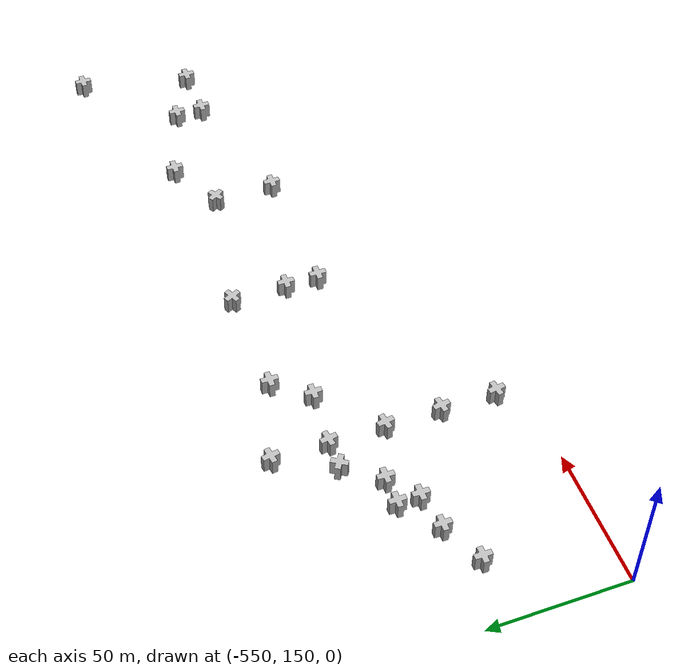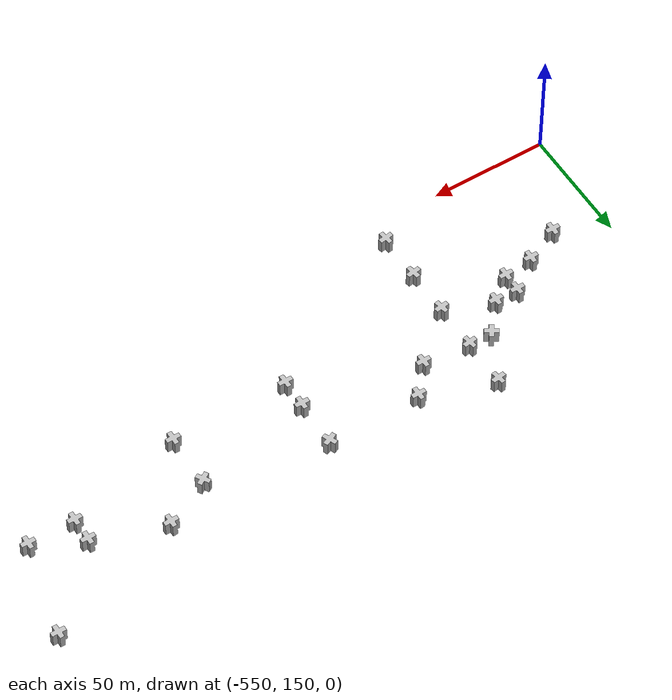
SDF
<sdf version="1.9">
 <world name="wayfinding_task2">
  <physics name="4ms" type="dart">
   <max_step_size>0.004</max_step_size>
   <real_time_factor>1.0</real_time_factor>
  </physics>
  <plugin filename="gz-sim-physics-system" name="gz::sim::systems::Physics"/>
  <plugin filename="gz-sim-user-commands-system" name="gz::sim::systems::UserCommands"/>
  <plugin filename="gz-sim-sensors-system" name="gz::sim::systems::Sensors">
   <render_engine>ogre2</render_engine>
   <disable_on_drained_battery>true</disable_on_drained_battery>
  </plugin>
  <plugin filename="gz-sim-imu-system" name="gz::sim::systems::Imu"/>
  <plugin filename="gz-sim-magnetometer-system" name="gz::sim::systems::Magnetometer"/>
  <plugin filename="gz-sim-forcetorque-system" name="gz::sim::systems::ForceTorque"/>
  <plugin filename="gz-sim-particle-emitter2-system" name="gz::sim::systems::ParticleEmitter2"/>
  <plugin filename="gz-sim-scene-broadcaster-system" name="gz::sim::systems::SceneBroadcaster"/>
  <plugin filename="gz-sim-contact-system" name="gz::sim::systems::Contact"/>
  <plugin filename="gz-sim-navsat-system" name="gz::sim::systems::NavSat"/>
  <scene><grid>false</grid><ambient>1.0 1.0 1.0</ambient><background>0.8 0.8 0.8</background></scene>
  <spherical_coordinates>
   <surface_model>EARTH_WGS84</surface_model>
   <world_frame_orientation>ENU</world_frame_orientation>
   <latitude_deg>-33.724223</latitude_deg>
   <longitude_deg>150.679736</longitude_deg>
   <elevation>0.0</elevation>
   <heading_deg>0.0</heading_deg>
  </spherical_coordinates>
  <light type="directional" name="sun">
   <pose>0 0 10 0 0 0</pose>
   <diffuse>0.8 0.8 0.8 1</diffuse>
   <specular>0.2 0.2 0.2 1</specular>
   <attenuation>
    <range>1000</range>
    <constant>0.9</constant>
    <linear>0.01</linear>
    <quadratic>0.001</quadratic>
   </attenuation>
   <direction>-0.5 0.1 -0.9</direction>
  </light>
  <plugin filename="libUSVWind.so" name="vrx::USVWind">
   <wind_obj>
    <name>wamv</name>
    <link_name>wamv/base_link</link_name>
    <coeff_vector>.5 .5 .33</coeff_vector>
   </wind_obj>
   <wind_direction>240</wind_direction>
   <wind_mean_velocity>0.0</wind_mean_velocity>
   <var_wind_gain_constants>0</var_wind_gain_constants>
   <var_wind_time_constants>2</var_wind_time_constants>
   <random_seed>10</random_seed>
   <update_rate>10</update_rate>
   <topic_wind_speed>/vrx/debug/wind/speed</topic_wind_speed>
   <topic_wind_direction>/vrx/debug/wind/direction</topic_wind_direction>
  </plugin>
  <plugin filename="libWayfindingScoringPlugin.so" name="vrx::WayfindingScoringPlugin">
   <vehicle>wamv</vehicle>
   <task_name>wayfinding</task_name>
   <waypoints><waypoint><pose>-33.7220013209 150.67684609858 1.0</pose></waypoint></waypoints>
   <markers><scaling>0.2 0.2 2.0</scaling><height>0.5</height></markers>
   <task_info_topic>/vrx/task/info</task_info_topic>
   <initial_state_duration>10</initial_state_duration>
   <ready_state_duration>10</ready_state_duration>
   <running_state_duration>300</running_state_duration>
   <release_topic>/vrx/release</release_topic>
  </plugin>
  <plugin filename="libPublisherPlugin.so" name="vrx::PublisherPlugin">
   <message type="gz.msgs.Param" topic="/vrx/wavefield/parameters" every="2.0">params {
          key: "direction"
          value {
            type: DOUBLE
            double_value: 0.0
          }
        }
        params {
          key: "gain"
          value {
            type: DOUBLE
            
            double_value: 0.0
          }
        }
        params {
          key: "period"
          value {
            type: DOUBLE
            
            double_value: 0.0
          }
        }
        params {
          key: "steepness"
          value {
            type: DOUBLE
            double_value: 0
          }
        }</message>
  </plugin>
  <include>
   <name>fangkuai</name>
   <pose>-528 191 0 0 0 0</pose>
   <uri>/home/mrxiuer/project/毕设/demo/src/vrx/vrx_gz/models/fangkuai/model.sdf</uri>
   <static>true</static>
  </include>
  <include>
   <name>fangkuai_1</name>
   <pose>-500 200 0 0 0 0</pose>
   <uri>/home/mrxiuer/project/毕设/demo/src/vrx/vrx_gz/models/fangkuai/model.sdf</uri>
   <static>true</static>
  </include>
  <include>
   <name>fangkuai_2</name>
   <pose>-490 208 0 0 0 1.57</pose>
   <uri>/home/mrxiuer/project/毕设/demo/src/vrx/vrx_gz/models/fangkuai/model.sdf</uri>
   <static>true</static>
  </include>
  <include>
   <name>fangkuai_3</name>
   <pose>-450 218 0 0 0 1.57</pose>
   <uri>/home/mrxiuer/project/毕设/demo/src/vrx/vrx_gz/models/fangkuai/model.sdf</uri>
   <static>true</static>
  </include>
  <include>
   <name>fangkuai_4</name>
   <pose>-400 198 0 0 0 0</pose>
   <uri>/home/mrxiuer/project/毕设/demo/src/vrx/vrx_gz/models/fangkuai/model.sdf</uri>
   <static>true</static>
  </include>
  <include>
   <name>fangkuai_5</name>
   <pose>-350 198 0 0 0 0</pose>
   <uri>/home/mrxiuer/project/毕设/demo/src/vrx/vrx_gz/models/fangkuai/model.sdf</uri>
   <static>true</static>
  </include>
  <include>
   <name>fangkuai_6</name>
   <pose>-330 230 0 0 0 0</pose>
   <uri>/home/mrxiuer/project/毕设/demo/src/vrx/vrx_gz/models/fangkuai/model.sdf</uri>
   <static>true</static>
  </include>
  <include>
   <name>zhuzi</name>
   <pose>-513 198 0 0 0 0</pose>
   <uri>/home/mrxiuer/project/毕设/demo/src/vrx/vrx_gz/models/zhuzi/model.sdf</uri>
   <static>true</static>
  </include>
  <include>
   <name>zhuzi_1</name>
   <pose>-500 200 0 0 0 0</pose>
   <uri>/home/mrxiuer/project/毕设/demo/src/vrx/vrx_gz/models/zhuzi/model.sdf</uri>
   <static>true</static>
  </include>
  <include>
   <name>zhuzi_2</name>
   <pose>-480 220 0 0 0 1</pose>
   <uri>/home/mrxiuer/project/毕设/demo/src/vrx/vrx_gz/models/zhuzi/model.sdf</uri>
   <static>true</static>
  </include>
  <include>
   <name>zhuzi_3</name>
   <pose>-440 230 0 0 0 1.57</pose>
   <uri>/home/mrxiuer/project/毕设/demo/src/vrx/vrx_gz/models/zhuzi/model.sdf</uri>
   <static>true</static>
  </include>
  <include>
   <name>zhuzi_4</name>
   <pose>-400 230 0 0 0 2</pose>
   <uri>/home/mrxiuer/project/毕设/demo/src/vrx/vrx_gz/models/zhuzi/model.sdf</uri>
   <static>true</static>
  </include>
  <include>
   <name>zhuzi_5</name>
   <pose>-300 220 0 0 0 1.57</pose>
   <uri>/home/mrxiuer/project/毕设/demo/src/vrx/vrx_gz/models/zhuzi/model.sdf</uri>
   <static>true</static>
  </include>
  <include>
   <name>zhuzi_6</name>
   <pose>-280 210 0 0 0 1.57</pose>
   <uri>/home/mrxiuer/project/毕设/demo/src/vrx/vrx_gz/models/zhuzi/model.sdf</uri>
   <static>true</static>
  </include>
  <include>
   <name>huan</name>
   <pose>-513 198 0 0 0 0</pose>
   <uri>/home/mrxiuer/project/毕设/demo/src/vrx/vrx_gz/models/huan/model.sdf</uri>
   <static>true</static>
  </include>
  <include>
   <name>huan_1</name>
   <pose>-500 208 0 0 0 0</pose>
   <uri>/home/mrxiuer/project/毕设/demo/src/vrx/vrx_gz/models/huan/model.sdf</uri>
   <static>true</static>
  </include>
  <include>
   <name>huan_2</name>
   <pose>-470 200 0 0 0 -1.42</pose>
   <uri>/home/mrxiuer/project/毕设/demo/src/vrx/vrx_gz/models/huan/model.sdf</uri>
   <static>true</static>
  </include>
  <include>
   <name>huan_3</name>
   <pose>-400 210 0 0 0 1.57</pose>
   <uri>/home/mrxiuer/project/毕设/demo/src/vrx/vrx_gz/models/huan/model.sdf</uri>
   <static>true</static>
  </include>
  <include>
   <name>huan_4</name>
   <pose>-300 210 0 0 0 1.57</pose>
   <uri>/home/mrxiuer/project/毕设/demo/src/vrx/vrx_gz/models/huan/model.sdf</uri>
   <static>true</static>
  </include>
  <include>
   <name>huan_5</name>
   <pose>-330 230 0 0 0 0</pose>
   <uri>/home/mrxiuer/project/毕设/demo/src/vrx/vrx_gz/models/huan/model.sdf</uri>
   <static>true</static>
  </include>
  <include>
   <name>huan_6</name>
   <pose>-270 250 0 0 0 1.57</pose>
   <uri>/home/mrxiuer/project/毕设/demo/src/vrx/vrx_gz/models/huan/model.sdf</uri>
   <static>true</static>
  </include>
  <include>
   <name>huan_7</name>
   <pose>-350 220 0 0 0 0.57</pose>
   <uri>/home/mrxiuer/project/毕设/demo/src/vrx/vrx_gz/models/huan/model.sdf</uri>
   <static>true</static>
  </include>
  <include>
   <name>huan_8</name>
   <pose>-470 220 0 0 0 -1.42</pose>
   <uri>/home/mrxiuer/project/毕设/demo/src/vrx/vrx_gz/models/huan/model.sdf</uri>
   <static>true</static>
  </include>
  <include>
   <name>huan_9</name>
   <pose>-470 180 0 0 0 -1.42</pose>
   <uri>/home/mrxiuer/project/毕设/demo/src/vrx/vrx_gz/models/huan/model.sdf</uri>
   <static>true</static>
  </include>
  <include>
   <name>huan_10</name>
   <pose>-470 160 0 0 0 -1.42</pose>
   <uri>/home/mrxiuer/project/毕设/demo/src/vrx/vrx_gz/models/huan/model.sdf</uri>
   <static>true</static>
  </include>
  <include>
   <name>huan_11</name>
   <pose>-470 240 0 0 0 -1.42</pose>
   <uri>/home/mrxiuer/project/毕设/demo/src/vrx/vrx_gz/models/huan/model.sdf</uri>
   <static>true</static>
  </include>
 </world>
</sdf>

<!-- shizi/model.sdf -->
<sdf version='1.7'>
  <model name='shizi'>
    <link name='link_1'>
      <inertial>
        <mass>1</mass>
        <inertia>
          <ixx>0.166667</ixx>
          <ixy>0</ixy>
          <ixz>0</ixz>
          <iyy>0.166667</iyy>
          <iyz>0</iyz>
          <izz>0.166667</izz>
        </inertia>
      </inertial>
      <pose>-0 -0 0 0 -0 0</pose>
      <visual name='visual'>
        <pose>0 0 0 0 -0 0</pose>
        <geometry>
          <mesh>
            <uri>/home/mrxiuer/project/毕设/demo/src/vrx/vrx_gz/models/shizi/mesh/shizi.dae</uri>
            <scale>1 1 1</scale>
          </mesh>
        </geometry>
        <transparency>0</transparency>
        <cast_shadows>1</cast_shadows>
      </visual>
      <collision name='collision'>
        <laser_retro>0</laser_retro>
        <max_contacts>10</max_contacts>
        <pose>0 0 0 0 -0 0</pose>
        <geometry>
          <mesh>
            <uri>/home/mrxiuer/project/毕设/demo/src/vrx/vrx_gz/models/shizi/mesh/shizi.dae</uri>
            <scale>1 1 1</scale>
          </mesh>
        </geometry>
        <surface>
          <friction>
            <ode>
              <mu>1</mu>
              <mu2>1</mu2>
              <fdir1>0 0 0</fdir1>
              <slip1>0</slip1>
              <slip2>0</slip2>
            </ode>
            <torsional>
              <coefficient>1</coefficient>
              <patch_radius>0</patch_radius>
              <surface_radius>0</surface_radius>
              <use_patch_radius>1</use_patch_radius>
              <ode>
                <slip>0</slip>
              </ode>
            </torsional>
          </friction>
          <bounce>
            <restitution_coefficient>0</restitution_coefficient>
            <threshold>1e+06</threshold>
          </bounce>
          <contact>
            <collide_without_contact>0</collide_without_contact>
            <collide_without_contact_bitmask>1</collide_without_contact_bitmask>
            <collide_bitmask>1</collide_bitmask>
            <ode>
              <soft_cfm>0</soft_cfm>
              <soft_erp>0.2</soft_erp>
              <kp>1e+13</kp>
              <kd>1</kd>
              <max_vel>0.01</max_vel>
              <min_depth>0</min_depth>
            </ode>
            <bullet>
              <split_impulse>1</split_impulse>
              <split_impulse_penetration_threshold>-0.01</split_impulse_penetration_threshold>
              <soft_cfm>0</soft_cfm>
              <soft_erp>0.2</soft_erp>
              <kp>1e+13</kp>
              <kd>1</kd>
            </bullet>
          </contact>
        </surface>
      </collision>
    </link>
    <static>0</static>
    <allow_auto_disable>1</allow_auto_disable>
  </model>
</sdf>
